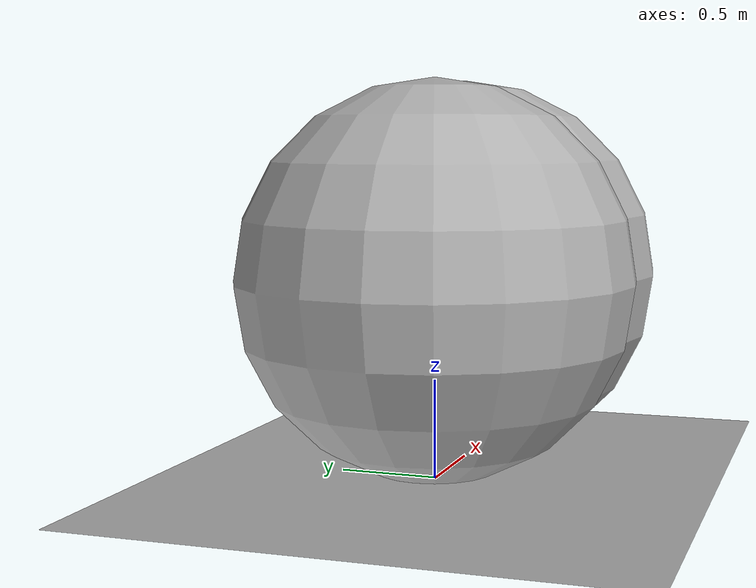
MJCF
<mujoco model="create_attach_test">
    <option timestep="0.005" gravity="0 0 -9.81" />
    <worldbody>

        <body name="object_1" pos="0 0 0">
            <geom type="plane" size="30 30 0.1" rgba="0.7 0.7 0.7 1" friction="1 1 1" />
        </body>
    <body name="sphere" pos="0.0 0.0 1.0"><geom type="sphere" size="1.0" rgba="0.7 0.7 0.7 1" /></body><body name="box" pos="0.5 0.0 1.0"><geom type="sphere" size="1.0" rgba="0.7 0.7 0.7 1" /></body></worldbody>
<joint name="joint_sphere_box" type="revolute" body1="sphere" body2="box" /></mujoco>
